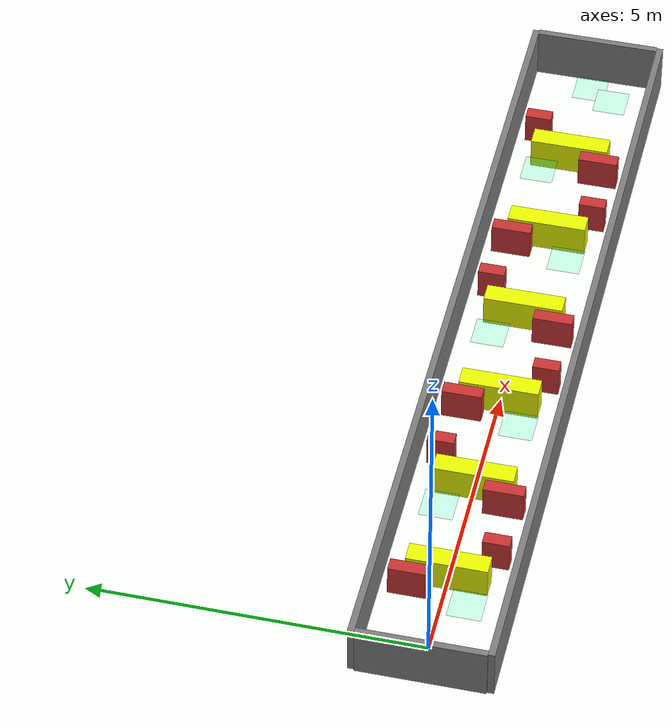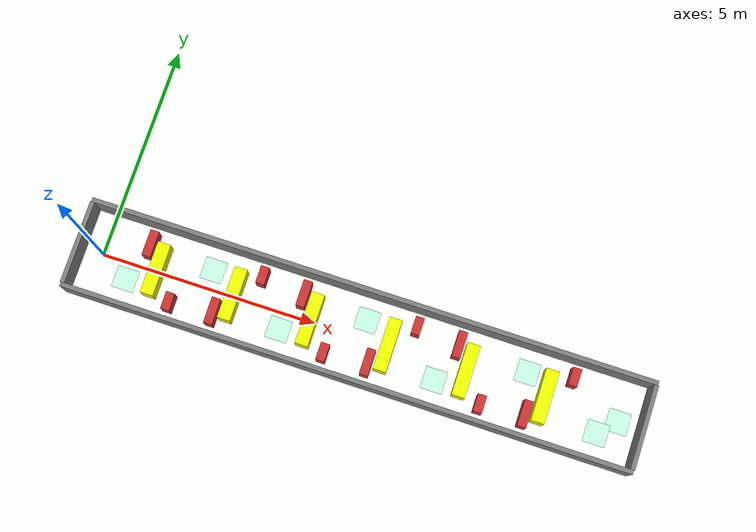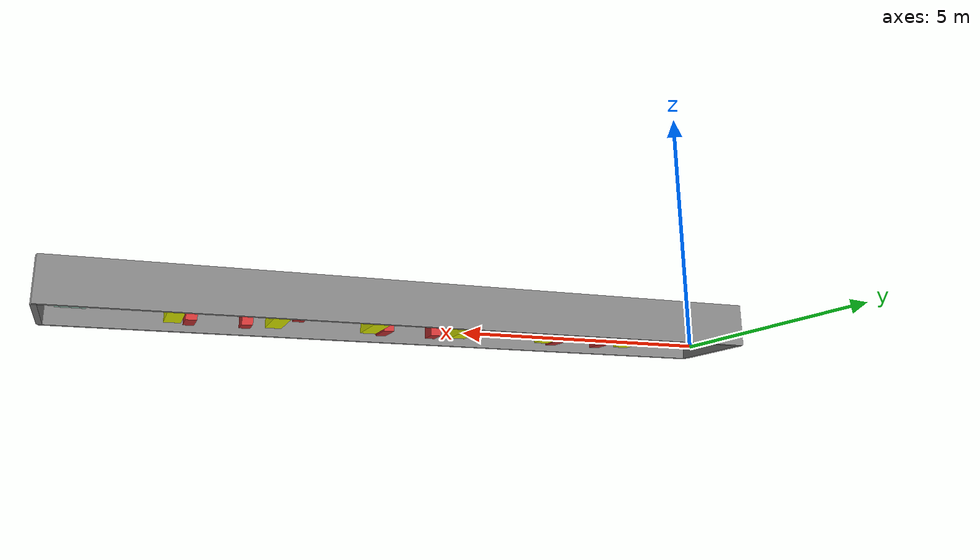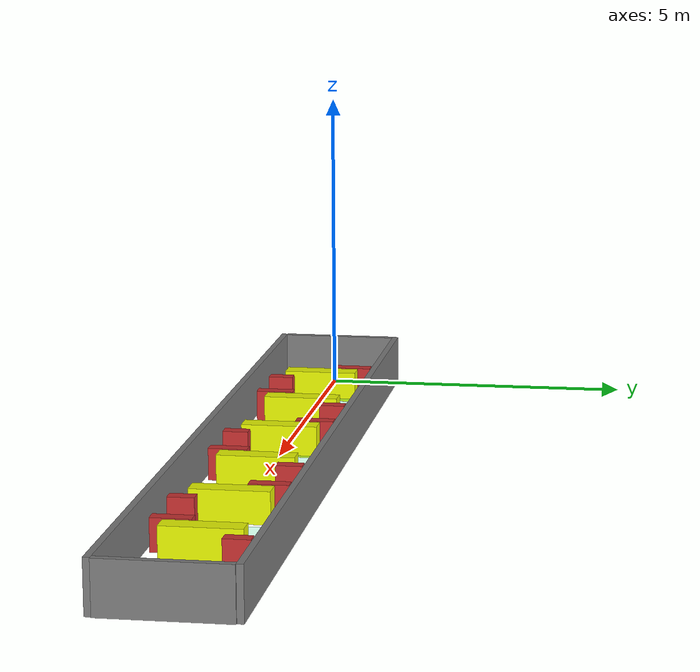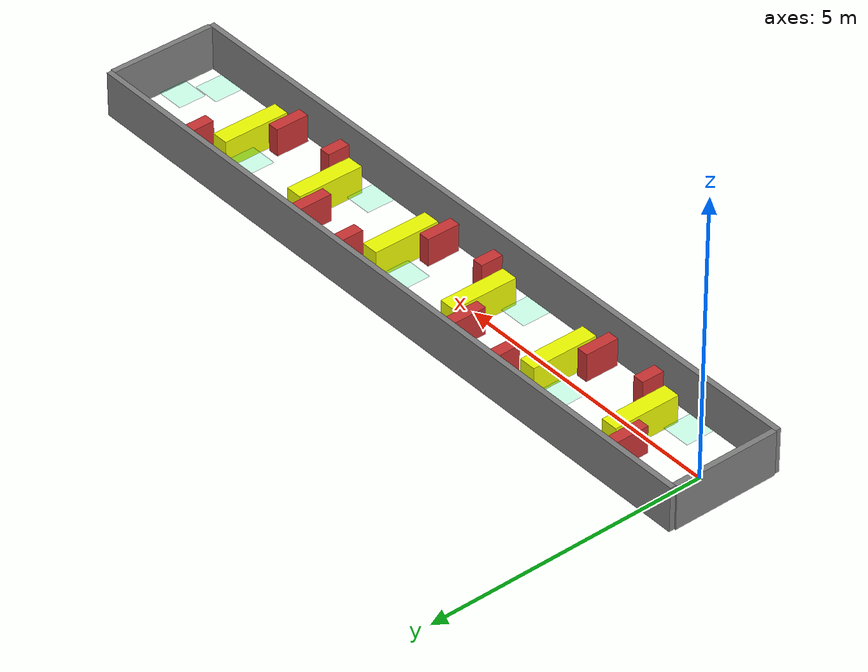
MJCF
<mujoco>
  <option timestep="0.01" integrator="RK4" />

  <worldbody>

    <!--  6 sets -->

    <!-- set 1 -->
    <body name="wall_1" pos="1.0 0.5 0.25">
      <geom name="wall_1" type="box" size="0.1 0.3 0.25" mass=".1" material="static" condim="4" />
    </body>

    <body name="wall_2" pos="1.8 -0.6 .25">
      <geom name="wall_2" type="box" size="0.1 0.2 0.25" mass=".1" material="static" condim="4" />
    </body>

    <body name="movable_cube1" pos="1.3 0 .25" euler="0 0 0">
      <freejoint />
      <geom name="movable_cube1" type="box" size="0.15 0.6 0.25" mass=".1" material="movable"
        condim="4" />
    </body>

    <!-- set 2 -->
    <body name="wall_3" pos="2.8 -0.5 0.25">
      <geom name="wall_3" type="box" size="0.1 0.3 0.25" mass=".1" material="static" condim="4" />
    </body>

    <body name="wall_4" pos="3.6 0.6 .25">
      <geom name="wall_4" type="box" size="0.1 0.2 0.25" mass=".1" material="static" condim="4" />
    </body>

    <body name="movable_cube2" pos="3.1 0 .25" euler="0 0 0">
      <freejoint />
      <geom name="movable_cube2" type="box" size="0.15 0.6 0.25" mass=".1" material="movable"
        condim="4" />
    </body>

    <!-- set 3 -->
    <body name="wall_5" pos="4.6 0.5 .25">
      <geom name="wall_5" type="box" size="0.1 0.3 0.25" mass=".1" material="static" condim="4" />
    </body>

    <body name="wall_6" pos="5.4 -0.6 0.25">
      <geom name="wall_6" type="box" size="0.1 0.2 0.25" mass=".1" material="static" condim="4" />
    </body>

    <body name="movable_cube3" pos="4.9 0 .25" euler="0 0 0">
      <freejoint />
      <geom name="movable_cube3" type="box" size="0.15 0.6 0.25" mass=".1" material="movable"
        condim="4" />
    </body>

    <!-- set 4 -->
    <body name="wall_7" pos="6.4 -0.5 0.25">
      <geom name="wall_7" type="box" size="0.1 0.3 0.25" mass=".1" material="static" condim="4" />
    </body>

    <body name="wall_8" pos="7.2 0.6 .25">
      <geom name="wall_8" type="box" size="0.1 0.2 0.25" mass=".1" material="static" condim="4" />
    </body>

    <body name="movable_cube4" pos="6.7 0 .25" euler="0 0 0">
      <freejoint />
      <geom name="movable_cube4" type="box" size="0.15 0.6 0.25" mass=".1" material="movable"
        condim="4" />
    </body>

    <!-- set 5 -->
    <body name="wall_9" pos="8.2 0.5 .25">
      <geom name="wall_9" type="box" size="0.1 0.3 0.25" mass=".1" material="static" condim="4" />
    </body>

    <body name="wall_10" pos="9.0 -0.6 0.25">
      <geom name="wall_10" type="box" size="0.1 0.2 0.25" mass=".1" material="static" condim="4" />
    </body>

    <body name="movable_cube5" pos="8.5 0 .25" euler="0 0 0">
      <freejoint />
      <geom name="movable_cube5" type="box" size="0.15 0.6 0.25" mass=".1" material="movable"
        condim="4" />
    </body>

    <!-- set 6 -->
    <body name="wall_11" pos="10.0 -0.5 0.25">
      <geom name="wall_11" type="box" size="0.1 0.3 0.25" mass=".1" material="static" condim="4" />
    </body>

    <body name="wall_12" pos="10.8 0.6 .25">
      <geom name="wall_12" type="box" size="0.1 0.2 0.25" mass=".1" material="static" condim="4" />
    </body>

    <body name="movable_cube6" pos="10.3 0 .25" euler="0 0 0">
      <freejoint />
      <geom name="movable_cube6" type="box" size="0.15 0.6 0.25" mass=".1" material="movable"
        condim="4" />
    </body>

    <body name="case" pos="0 0 0.1">
      <geom name="gcase_a" type="box" size="0.05 0.95 0.4" pos="-0.5 0 0.2" />
      <geom name="gcase_b" type="box" size="0.05 0.95 0.4" pos="12.5 0 0.2" />
      <geom name="gcase_c" type="box" size="6.525 0.05 0.4" pos="6 1 0.2" />
      <geom name="gcase_d" type="box" size="6.525 0.05 0.4" pos="6 -1 0.2" />
    </body>

    <site name = "target1" type="box" pos="0.7 -0.4 0.25" size="0.25 0.25" rgba="0 1 0.6 0.2" />
    <site name = "target2" type="box" pos="2.5 0.4 0.25" size="0.25 0.25" rgba="0 1 0.6 0.2" />
    <site name = "target3" type="box" pos="4.3 -0.4 0.25" size="0.25 0.25" rgba="0 1 0.6 0.2" />
    <site name = "target4" type="box" pos="6.1 0.4 0.25" size="0.25 0.25" rgba="0 1 0.6 0.2" />
    <site name = "target5" type="box" pos="7.9 -0.4 0.25" size="0.25 0.25" rgba="0 1 0.6 0.2" />
    <site name = "target6" type="box" pos="9.8 0.4 0.25" size="0.25 0.25" rgba="0 1 0.6 0.2" />
    <site name = "target7" type="box" pos="11.6 -0.4 0.25" size="0.25 0.25" rgba="0 1 0.6 0.2" />
    <site name="target8" type="box" pos="12.0 0 0.1" size="0.25 0.25" rgba="0 1 0.6 0.2" />

  </worldbody>

  <asset>
    <!-- Materials for visualization -->
    <material name="movable" rgba="0.94 1.0 0.0 1" />
    <material name="static" rgba="0.8 0.2 0.2 1" />

  </asset>

</mujoco>
